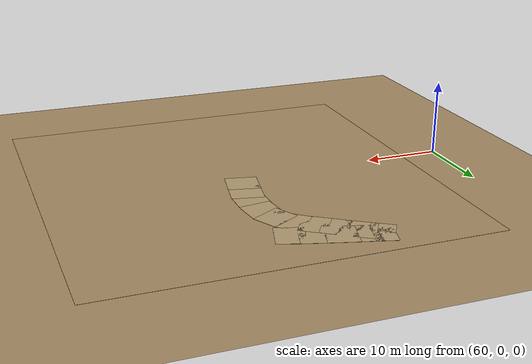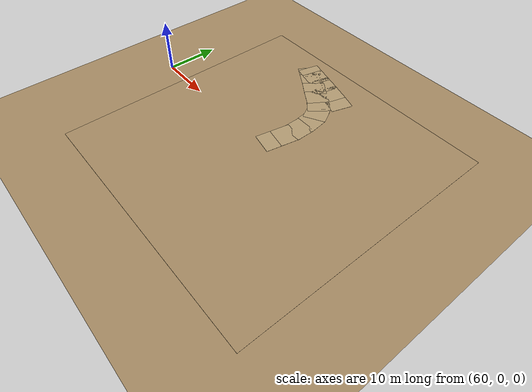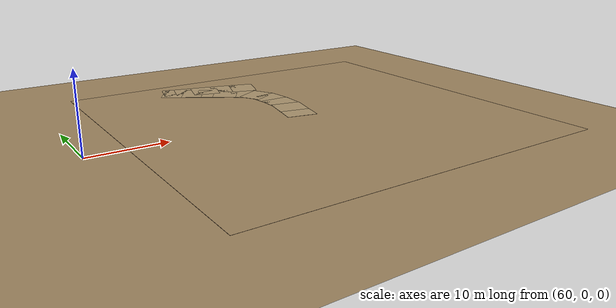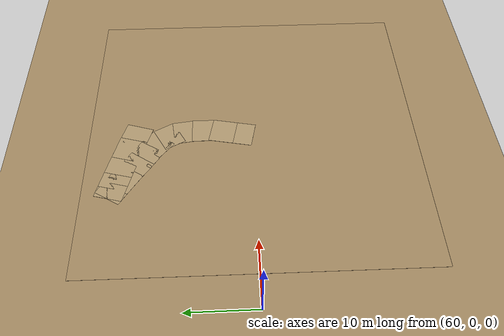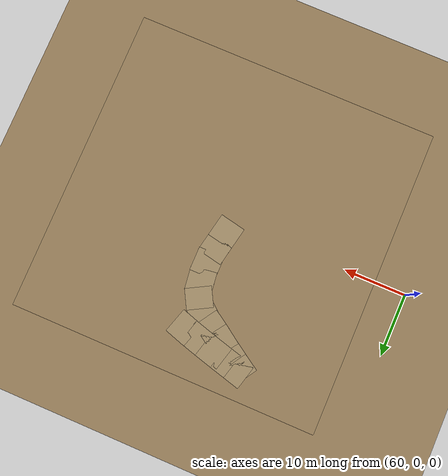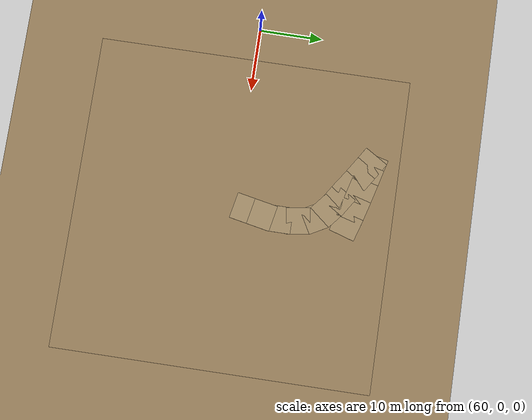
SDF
<sdf version="1.6">
 <world name="navitas_arena">
  <model name="ground_plane">
   <static>true</static>
   <link name="link">
    <collision name="collision">
     <geometry><plane><normal>0 0 1</normal><size>400 400</size></plane></geometry>
     <surface><friction><ode><mu>0.800</mu><mu2>0.800</mu2></ode></friction></surface>
    </collision>
    <visual name="visual">
     <cast_shadows>false</cast_shadows>
     <geometry><plane><normal>0 0 1</normal><size>400 400</size></plane></geometry>
     <material>
      <ambient>0.62 0.52 0.37 1</ambient>
      <diffuse>0.62 0.52 0.37 1</diffuse>
      <specular>0.04 0.04 0.04 1</specular>
     </material>
    </visual>
   </link>
  </model>
  <model name="gd_zor">
   <static>true</static>
   <pose>90.000 0.000 0.010 0 0 0.000</pose>
   <link name="link">
    <collision name="col"><geometry><box><size>50.000 50.000 0.020</size></box></geometry></collision>
    <visual name="vis">
     <geometry><box><size>50.000 50.000 0.020</size></box></geometry>
     <material>
      <ambient>0.62 0.52 0.37 1</ambient>
      <diffuse>0.62 0.52 0.37 1</diffuse>
      <specular>0.04 0.04 0.04 1</specular>
     </material>
    </visual>
   </link>
  </model>
  <model name="grid_zor_v3">
   <static>true</static>
   <pose>80.000 0.000 0.015 0 0 0.000</pose>
   <link name="link">
    <collision name="col"><geometry><box><size>0.100 50.000 0.006</size></box></geometry></collision>
    <visual name="vis">
     <geometry><box><size>0.100 50.000 0.006</size></box></geometry>
     <material>
      <ambient>0.30 0.24 0.17 1</ambient>
      <diffuse>0.30 0.24 0.17 1</diffuse>
      <specular>0.04 0.04 0.04 1</specular>
     </material>
    </visual>
   </link>
  </model>
  <model name="grid_zor_v4">
   <static>true</static>
   <pose>85.000 0.000 0.015 0 0 0.000</pose>
   <link name="link">
    <collision name="col"><geometry><box><size>0.100 50.000 0.006</size></box></geometry></collision>
    <visual name="vis">
     <geometry><box><size>0.100 50.000 0.006</size></box></geometry>
     <material>
      <ambient>0.30 0.24 0.17 1</ambient>
      <diffuse>0.30 0.24 0.17 1</diffuse>
      <specular>0.04 0.04 0.04 1</specular>
     </material>
    </visual>
   </link>
  </model>
  <model name="grid_zor_h5">
   <static>true</static>
   <pose>90.000 0.000 0.015 0 0 0.000</pose>
   <link name="link">
    <collision name="col"><geometry><box><size>50.000 0.100 0.006</size></box></geometry></collision>
    <visual name="vis">
     <geometry><box><size>50.000 0.100 0.006</size></box></geometry>
     <material>
      <ambient>0.30 0.24 0.17 1</ambient>
      <diffuse>0.30 0.24 0.17 1</diffuse>
      <specular>0.04 0.04 0.04 1</specular>
     </material>
    </visual>
   </link>
  </model>
  <model name="grid_zor_v5">
   <static>true</static>
   <pose>90.000 0.000 0.015 0 0 0.000</pose>
   <link name="link">
    <collision name="col"><geometry><box><size>0.100 50.000 0.006</size></box></geometry></collision>
    <visual name="vis">
     <geometry><box><size>0.100 50.000 0.006</size></box></geometry>
     <material>
      <ambient>0.30 0.24 0.17 1</ambient>
      <diffuse>0.30 0.24 0.17 1</diffuse>
      <specular>0.04 0.04 0.04 1</specular>
     </material>
    </visual>
   </link>
  </model>
  <model name="grid_zor_h6">
   <static>true</static>
   <pose>90.000 5.000 0.015 0 0 0.000</pose>
   <link name="link">
    <collision name="col"><geometry><box><size>50.000 0.100 0.006</size></box></geometry></collision>
    <visual name="vis">
     <geometry><box><size>50.000 0.100 0.006</size></box></geometry>
     <material>
      <ambient>0.30 0.24 0.17 1</ambient>
      <diffuse>0.30 0.24 0.17 1</diffuse>
      <specular>0.04 0.04 0.04 1</specular>
     </material>
    </visual>
   </link>
  </model>
  <model name="grid_zor_h7">
   <static>true</static>
   <pose>90.000 10.000 0.015 0 0 0.000</pose>
   <link name="link">
    <collision name="col"><geometry><box><size>50.000 0.100 0.006</size></box></geometry></collision>
    <visual name="vis">
     <geometry><box><size>50.000 0.100 0.006</size></box></geometry>
     <material>
      <ambient>0.30 0.24 0.17 1</ambient>
      <diffuse>0.30 0.24 0.17 1</diffuse>
      <specular>0.04 0.04 0.04 1</specular>
     </material>
    </visual>
   </link>
  </model>
  <model name="road_zor_2_10">
   <static>true</static>
   <pose>89.139 1.800 0.040 0 0 1.373</pose>
   <link name="link">
    <collision name="col"><geometry><box><size>3.756 4.200 0.020</size></box></geometry></collision>
    <visual name="vis">
     <geometry><box><size>3.756 4.200 0.020</size></box></geometry>
     <material>
      <ambient>0.67 0.58 0.43 1</ambient>
      <diffuse>0.67 0.58 0.43 1</diffuse>
      <specular>0.04 0.04 0.04 1</specular>
     </material>
    </visual>
   </link>
  </model>
  <model name="road_zor_2_11">
   <static>true</static>
   <pose>89.698 4.600 0.040 0 0 1.374</pose>
   <link name="link">
    <collision name="col"><geometry><box><size>3.755 4.200 0.020</size></box></geometry></collision>
    <visual name="vis">
     <geometry><box><size>3.755 4.200 0.020</size></box></geometry>
     <material>
      <ambient>0.67 0.58 0.43 1</ambient>
      <diffuse>0.67 0.58 0.43 1</diffuse>
      <specular>0.04 0.04 0.04 1</specular>
     </material>
    </visual>
   </link>
  </model>
  <model name="road_zor_2_12">
   <static>true</static>
   <pose>89.978 7.460 0.040 0 0 1.570</pose>
   <link name="link">
    <collision name="col"><geometry><box><size>3.820 4.200 0.020</size></box></geometry></collision>
    <visual name="vis">
     <geometry><box><size>3.820 4.200 0.020</size></box></geometry>
     <material>
      <ambient>0.67 0.58 0.43 1</ambient>
      <diffuse>0.67 0.58 0.43 1</diffuse>
      <specular>0.04 0.04 0.04 1</specular>
     </material>
    </visual>
   </link>
  </model>
  <model name="road_zor_2_13">
   <static>true</static>
   <pose>89.792 10.340 0.040 0 0 1.702</pose>
   <link name="link">
    <collision name="col"><geometry><box><size>3.765 4.200 0.020</size></box></geometry></collision>
    <visual name="vis">
     <geometry><box><size>3.765 4.200 0.020</size></box></geometry>
     <material>
      <ambient>0.67 0.58 0.43 1</ambient>
      <diffuse>0.67 0.58 0.43 1</diffuse>
      <specular>0.04 0.04 0.04 1</specular>
     </material>
    </visual>
   </link>
  </model>
  <model name="road_zor_2_14">
   <static>true</static>
   <pose>89.014 12.833 0.040 0 0 2.073</pose>
   <link name="link">
    <collision name="col"><geometry><box><size>3.349 4.200 0.020</size></box></geometry></collision>
    <visual name="vis">
     <geometry><box><size>3.349 4.200 0.020</size></box></geometry>
     <material>
      <ambient>0.67 0.58 0.43 1</ambient>
      <diffuse>0.67 0.58 0.43 1</diffuse>
      <specular>0.04 0.04 0.04 1</specular>
     </material>
    </visual>
   </link>
  </model>
  <model name="road_zor_2_15">
   <static>true</static>
   <pose>87.486 14.688 0.040 0 0 2.447</pose>
   <link name="link">
    <collision name="col"><geometry><box><size>3.342 4.200 0.020</size></box></geometry></collision>
    <visual name="vis">
     <geometry><box><size>3.342 4.200 0.020</size></box></geometry>
     <material>
      <ambient>0.67 0.58 0.43 1</ambient>
      <diffuse>0.67 0.58 0.43 1</diffuse>
      <specular>0.04 0.04 0.04 1</specular>
     </material>
    </visual>
   </link>
  </model>
  <model name="road_zor_2_16">
   <static>true</static>
   <pose>85.485 16.153 0.040 0 0 2.570</pose>
   <link name="link">
    <collision name="col"><geometry><box><size>3.428 4.200 0.020</size></box></geometry></collision>
    <visual name="vis">
     <geometry><box><size>3.428 4.200 0.020</size></box></geometry>
     <material>
      <ambient>0.67 0.58 0.43 1</ambient>
      <diffuse>0.67 0.58 0.43 1</diffuse>
      <specular>0.04 0.04 0.04 1</specular>
     </material>
    </visual>
   </link>
  </model>
  <model name="road_zor_2_17">
   <static>true</static>
   <pose>83.343 17.578 0.040 0 0 2.539</pose>
   <link name="link">
    <collision name="col"><geometry><box><size>3.519 4.200 0.020</size></box></geometry></collision>
    <visual name="vis">
     <geometry><box><size>3.519 4.200 0.020</size></box></geometry>
     <material>
      <ambient>0.67 0.58 0.43 1</ambient>
      <diffuse>0.67 0.58 0.43 1</diffuse>
      <specular>0.04 0.04 0.04 1</specular>
     </material>
    </visual>
   </link>
  </model>
  <model name="road_zor_2_18">
   <static>true</static>
   <pose>81.043 19.110 0.040 0 0 2.567</pose>
   <link name="link">
    <collision name="col"><geometry><box><size>3.809 4.200 0.020</size></box></geometry></collision>
    <visual name="vis">
     <geometry><box><size>3.809 4.200 0.020</size></box></geometry>
     <material>
      <ambient>0.67 0.58 0.43 1</ambient>
      <diffuse>0.67 0.58 0.43 1</diffuse>
      <specular>0.04 0.04 0.04 1</specular>
     </material>
    </visual>
   </link>
  </model>
  <model name="road_zor_2_19">
   <static>true</static>
   <pose>78.949 20.450 0.040 0 0 2.579</pose>
   <link name="link">
    <collision name="col"><geometry><box><size>2.964 4.200 0.020</size></box></geometry></collision>
    <visual name="vis">
     <geometry><box><size>2.964 4.200 0.020</size></box></geometry>
     <material>
      <ambient>0.67 0.58 0.43 1</ambient>
      <diffuse>0.67 0.58 0.43 1</diffuse>
      <specular>0.04 0.04 0.04 1</specular>
     </material>
    </visual>
   </link>
  </model>
  <model name="road_zor_3_24">
   <static>true</static>
   <pose>89.339 17.910 0.040 0 0 2.837</pose>
   <link name="link">
    <collision name="col"><geometry><box><size>3.631 4.200 0.020</size></box></geometry></collision>
    <visual name="vis">
     <geometry><box><size>3.631 4.200 0.020</size></box></geometry>
     <material>
      <ambient>0.67 0.58 0.43 1</ambient>
      <diffuse>0.67 0.58 0.43 1</diffuse>
      <specular>0.04 0.04 0.04 1</specular>
     </material>
    </visual>
   </link>
  </model>
  <model name="road_zor_3_25">
   <static>true</static>
   <pose>86.586 18.730 0.040 0 0 2.866</pose>
   <link name="link">
    <collision name="col"><geometry><box><size>3.915 4.200 0.020</size></box></geometry></collision>
    <visual name="vis">
     <geometry><box><size>3.915 4.200 0.020</size></box></geometry>
     <material>
      <ambient>0.67 0.58 0.43 1</ambient>
      <diffuse>0.67 0.58 0.43 1</diffuse>
      <specular>0.04 0.04 0.04 1</specular>
     </material>
    </visual>
   </link>
  </model>
  <model name="road_zor_3_26">
   <static>true</static>
   <pose>83.707 19.520 0.040 0 0 2.881</pose>
   <link name="link">
    <collision name="col"><geometry><box><size>3.855 4.200 0.020</size></box></geometry></collision>
    <visual name="vis">
     <geometry><box><size>3.855 4.200 0.020</size></box></geometry>
     <material>
      <ambient>0.67 0.58 0.43 1</ambient>
      <diffuse>0.67 0.58 0.43 1</diffuse>
      <specular>0.04 0.04 0.04 1</specular>
     </material>
    </visual>
   </link>
  </model>
  <model name="road_zor_3_27">
   <static>true</static>
   <pose>81.046 20.220 0.040 0 0 2.888</pose>
   <link name="link">
    <collision name="col"><geometry><box><size>3.449 4.200 0.020</size></box></geometry></collision>
    <visual name="vis">
     <geometry><box><size>3.449 4.200 0.020</size></box></geometry>
     <material>
      <ambient>0.67 0.58 0.43 1</ambient>
      <diffuse>0.67 0.58 0.43 1</diffuse>
      <specular>0.04 0.04 0.04 1</specular>
     </material>
    </visual>
   </link>
  </model>
  <model name="road_zor_3_28">
   <static>true</static>
   <pose>78.944 20.770 0.040 0 0 2.883</pose>
   <link name="link">
    <collision name="col"><geometry><box><size>2.696 4.200 0.020</size></box></geometry></collision>
    <visual name="vis">
     <geometry><box><size>2.696 4.200 0.020</size></box></geometry>
     <material>
      <ambient>0.67 0.58 0.43 1</ambient>
      <diffuse>0.67 0.58 0.43 1</diffuse>
      <specular>0.04 0.04 0.04 1</specular>
     </material>
    </visual>
   </link>
  </model>
 </world>
</sdf>
